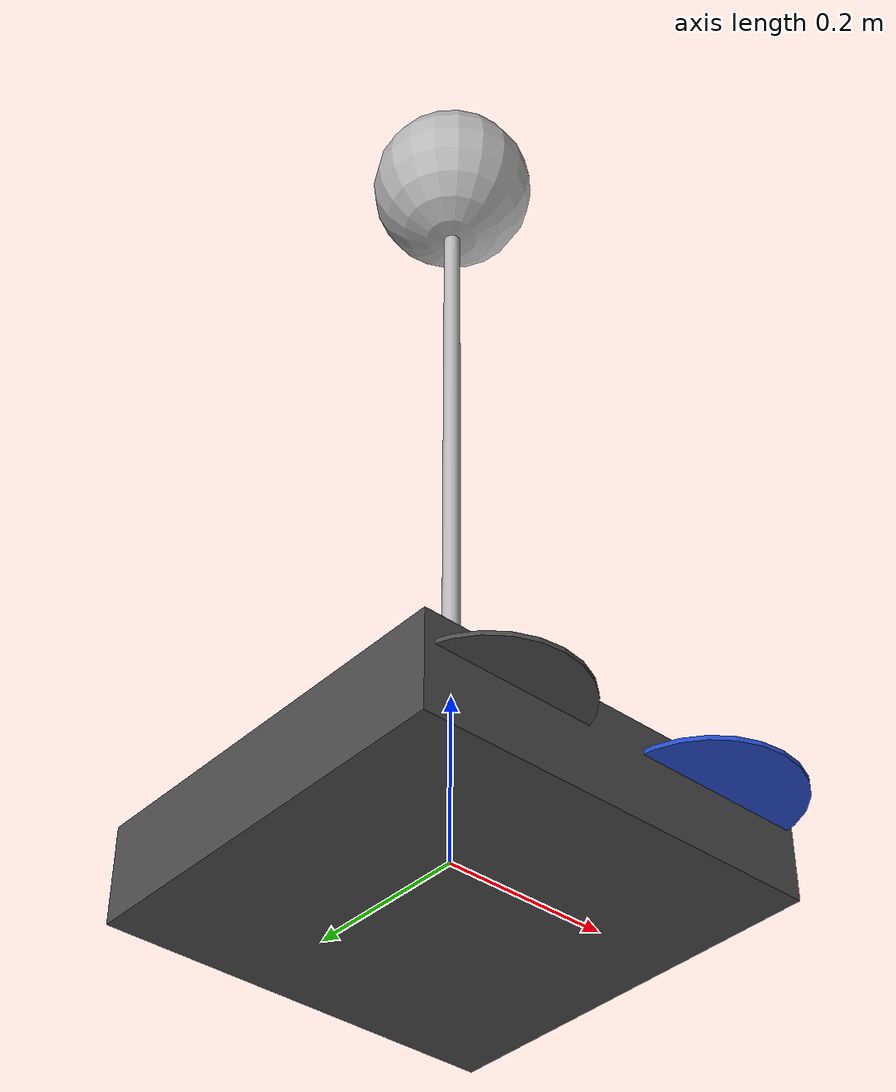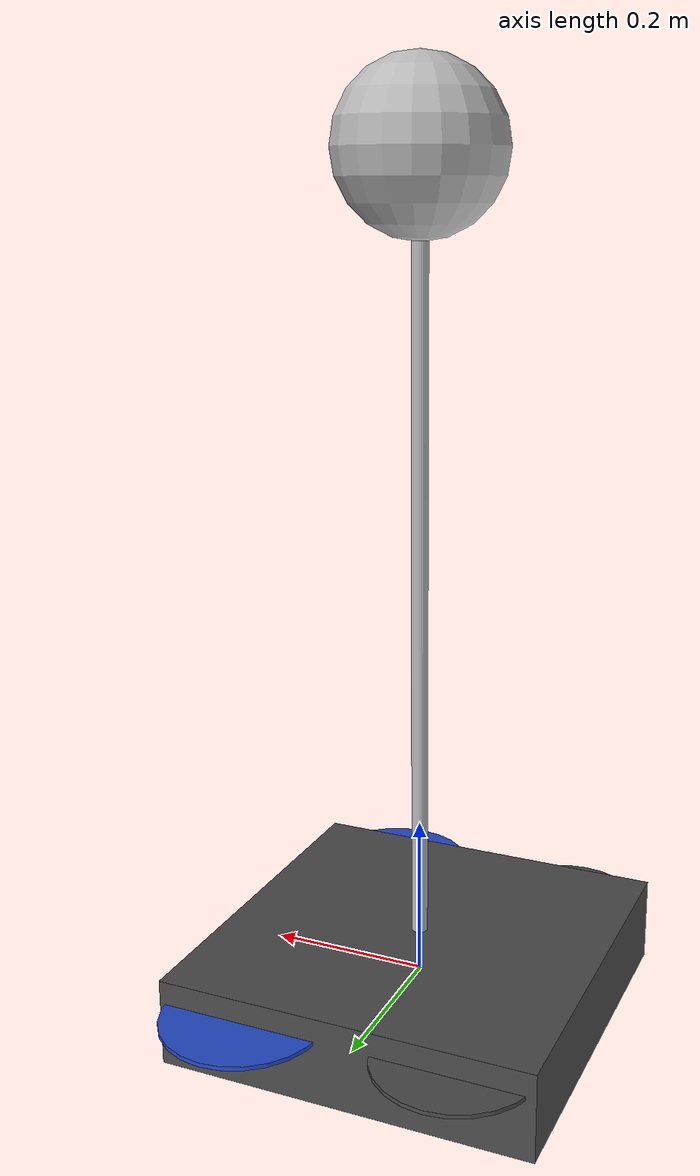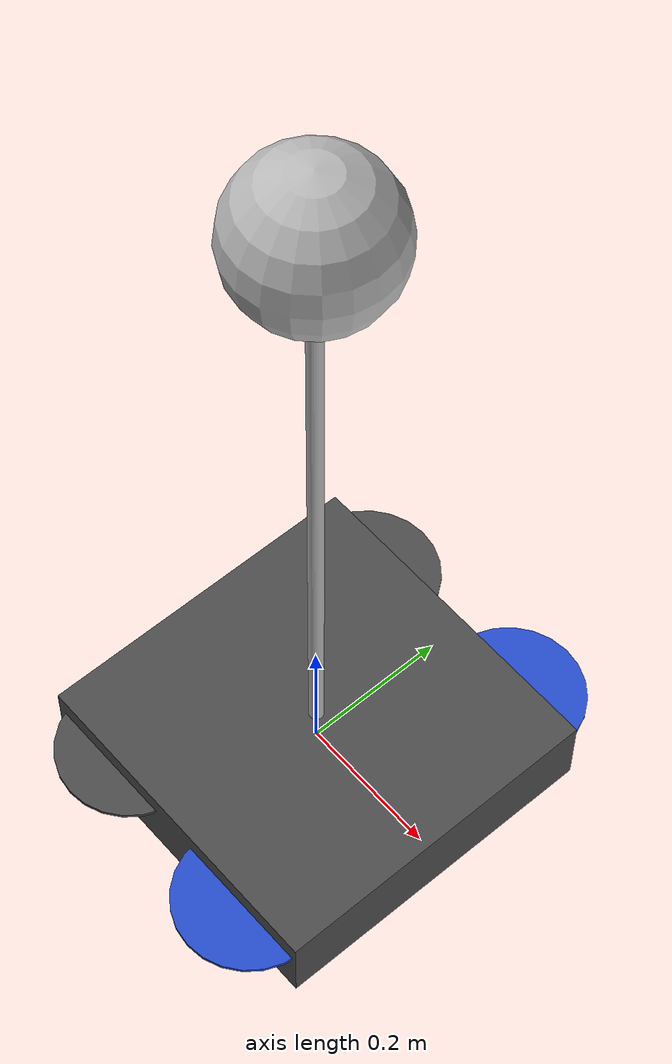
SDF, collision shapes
<?xml version='1.0'?>
<sdf version='1.6'>
  <model name='iris_pendulum'>
  <static>false</static>
  <include>
    <uri>model://iris</uri>
  </include>

  <link name='pendulum'>
    <pose>0 0 0.5 0 0 0</pose>
    <inertial>
      <mass>0.01</mass>
      <inertia>
        <ixx>0.00005</ixx>
        <ixy>0</ixy>
        <ixz>0</ixz>
        <iyy>0.008333</iyy>
        <iyz>0</iyz>
        <izz>0.008333</izz>
      </inertia>
    </inertial>
    <collision name='pendulun_collision'>
      <geometry>
        <cylinder>
          <radius>0.01</radius>
          <length>1</length>
        </cylinder>
      </geometry>
    </collision>
    <visual name='pendulum_visual'>
      <geometry>
        <cylinder>
          <radius>0.01</radius>
          <length>1</length>
        </cylinder>
      </geometry>
    </visual>
    <gravity>1</gravity>
  </link>

  <link name='load'>
    <pose>0 0 1 0 0 0</pose>
    <inertial>
      <mass>0.1</mass>
      <inertia>
        <ixx>0.004</ixx>
        <ixy>0</ixy>
        <ixz>0</ixz>
        <iyy>0.004</iyy>
        <iyz>0</iyz>
        <izz>0.004</izz>
      </inertia>
    </inertial>

    <collision name='load_collision'>
      <geometry>
        <sphere>
          <radius>0.1 0.1 0.1</radius>
        </sphere>
      </geometry>
    </collision>

    <visual name='load_visual'>
      <geometry>
        <sphere>
          <radius>0.1 0.1 0.1</radius>
        </sphere>
      </geometry>
    </visual>
    <gravity>1</gravity>
  </link>

  <joint name='load_joint' type='universal'>
    <pose>0 0 0 0 0 0</pose>
    <child>load</child>
    <parent>pendulum</parent>
  </joint>

  <joint name='pendulum_joint' type='universal'>
    <pose>0 0 -0.5 0 0 0</pose>
    <child>pendulum</child>
    <parent>iris::base_link</parent>
  </joint>

  </model>
</sdf>

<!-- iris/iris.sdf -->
<sdf version='1.5'>
  <model name='iris'>
    <link name='base_link'>
      <pose>0 0 0 0 -0 0</pose>
      <inertial>
        <pose>0 0 0 0 -0 0</pose>
        <mass>1.5</mass>
        <inertia>
          <ixx>0.0347563</ixx>
          <ixy>0</ixy>
          <ixz>0</ixz>
          <iyy>0.0458929</iyy>
          <iyz>0</iyz>
          <izz>0.0977</izz>
        </inertia>
      </inertial>
      <collision name='base_link_collision'>
        <pose>0 0 0 0 -0 0</pose>
        <geometry>
          <box>
            <size>0.47 0.47 0.11</size>
          </box>
        </geometry>
        <surface>
          <contact>
            <ode/>
          </contact>
          <friction>
            <ode/>
          </friction>
        </surface>
      </collision>
      <visual name='base_link_visual'>
        <pose>0 0 0 0 -0 0</pose>
        <geometry>
          <mesh>
            <scale>1 1 1</scale>
            <uri>model://rotors_description/meshes/iris.dae</uri>
          </mesh>
        </geometry>
        <material>
          <script>
            <name>Gazebo/DarkGrey</name>
            <uri>__default__</uri>
          </script>
        </material>
      </visual>
      <gravity>1</gravity>
      <velocity_decay/>
      <self_collide>0</self_collide>
    </link>
    <link name='iris/imu_link'>
      <pose>0 0 0 0 -0 0</pose>
      <inertial>
        <pose>0 0 0 0 -0 0</pose>
        <mass>0.015</mass>
        <inertia>
          <ixx>1e-05</ixx>
          <ixy>0</ixy>
          <ixz>0</ixz>
          <iyy>1e-05</iyy>
          <iyz>0</iyz>
          <izz>1e-05</izz>
        </inertia>
      </inertial>
    </link>
    <joint name='iris/imu_joint' type='revolute'>
      <child>iris/imu_link</child>
      <parent>base_link</parent>
      <axis>
        <xyz>1 0 0</xyz>
        <limit>
          <lower>0</lower>
          <upper>0</upper>
          <effort>0</effort>
          <velocity>0</velocity>
        </limit>
        <dynamics>
          <spring_reference>0</spring_reference>
          <spring_stiffness>0</spring_stiffness>
        </dynamics>
        <use_parent_model_frame>1</use_parent_model_frame>
      </axis>
    </joint>
    <link name='rotor_0'>
      <pose>0.13 -0.22 0.023 0 -0 0</pose>
      <inertial>
        <pose>0 0 0 0 -0 0</pose>
        <mass>0.005</mass>
        <inertia>
          <ixx>9.75e-07</ixx>
          <ixy>0</ixy>
          <ixz>0</ixz>
          <iyy>0.000166704</iyy>
          <iyz>0</iyz>
          <izz>0.000167604</izz>
        </inertia>
      </inertial>
      <collision name='rotor_0_collision'>
        <pose>0 0 0 0 -0 0</pose>
        <geometry>
          <cylinder>
            <length>0.005</length>
            <radius>0.1</radius>
          </cylinder>
        </geometry>
        <surface>
          <contact>
            <ode/>
          </contact>
          <friction>
            <ode/>
          </friction>
        </surface>
      </collision>
      <visual name='rotor_0_visual'>
        <pose>0 0 0 0 -0 0</pose>
        <geometry>
          <mesh>
            <scale>1 1 1</scale>
            <uri>model://rotors_description/meshes/iris_prop_ccw.dae</uri>
          </mesh>
        </geometry>
        <material>
          <script>
            <name>Gazebo/Blue</name>
            <uri>__default__</uri>
          </script>
        </material>
      </visual>
      <gravity>1</gravity>
      <velocity_decay/>
      <self_collide>0</self_collide>
    </link>
    <joint name='rotor_0_joint' type='revolute'>
      <child>rotor_0</child>
      <parent>base_link</parent>
      <axis>
        <xyz>0 0 1</xyz>
        <limit>
          <lower>-1e+16</lower>
          <upper>1e+16</upper>
        </limit>
        <dynamics>
          <spring_reference>0</spring_reference>
          <spring_stiffness>0</spring_stiffness>
        </dynamics>
        <use_parent_model_frame>1</use_parent_model_frame>
      </axis>
    </joint>
    <link name='rotor_1'>
      <pose>-0.13 0.2 0.023 0 -0 0</pose>
      <inertial>
        <pose>0 0 0 0 -0 0</pose>
        <mass>0.005</mass>
        <inertia>
          <ixx>9.75e-07</ixx>
          <ixy>0</ixy>
          <ixz>0</ixz>
          <iyy>0.000166704</iyy>
          <iyz>0</iyz>
          <izz>0.000167604</izz>
        </inertia>
      </inertial>
      <collision name='rotor_1_collision'>
        <pose>0 0 0 0 -0 0</pose>
        <geometry>
          <cylinder>
            <length>0.005</length>
            <radius>0.1</radius>
          </cylinder>
        </geometry>
        <surface>
          <contact>
            <ode/>
          </contact>
          <friction>
            <ode/>
          </friction>
        </surface>
      </collision>
      <visual name='rotor_1_visual'>
        <pose>0 0 0 0 -0 0</pose>
        <geometry>
          <mesh>
            <scale>1 1 1</scale>
            <uri>model://rotors_description/meshes/iris_prop_ccw.dae</uri>
          </mesh>
        </geometry>
        <material>
          <script>
            <name>Gazebo/DarkGrey</name>
            <uri>__default__</uri>
          </script>
        </material>
      </visual>
      <gravity>1</gravity>
      <velocity_decay/>
      <self_collide>0</self_collide>
    </link>
    <joint name='rotor_1_joint' type='revolute'>
      <child>rotor_1</child>
      <parent>base_link</parent>
      <axis>
        <xyz>0 0 1</xyz>
        <limit>
          <lower>-1e+16</lower>
          <upper>1e+16</upper>
        </limit>
        <dynamics>
          <spring_reference>0</spring_reference>
          <spring_stiffness>0</spring_stiffness>
        </dynamics>
        <use_parent_model_frame>1</use_parent_model_frame>
      </axis>
    </joint>
    <link name='rotor_2'>
      <pose>0.13 0.22 0.023 0 -0 0</pose>
      <inertial>
        <pose>0 0 0 0 -0 0</pose>
        <mass>0.005</mass>
        <inertia>
          <ixx>9.75e-07</ixx>
          <ixy>0</ixy>
          <ixz>0</ixz>
          <iyy>0.000166704</iyy>
          <iyz>0</iyz>
          <izz>0.000167604</izz>
        </inertia>
      </inertial>
      <collision name='rotor_2_collision'>
        <pose>0 0 0 0 -0 0</pose>
        <geometry>
          <cylinder>
            <length>0.005</length>
            <radius>0.1</radius>
          </cylinder>
        </geometry>
        <surface>
          <contact>
            <ode/>
          </contact>
          <friction>
            <ode/>
          </friction>
        </surface>
      </collision>
      <visual name='rotor_2_visual'>
        <pose>0 0 0 0 -0 0</pose>
        <geometry>
          <mesh>
            <scale>1 1 1</scale>
            <uri>model://rotors_description/meshes/iris_prop_cw.dae</uri>
          </mesh>
        </geometry>
        <material>
          <script>
            <name>Gazebo/Blue</name>
            <uri>__default__</uri>
          </script>
        </material>
      </visual>
      <gravity>1</gravity>
      <velocity_decay/>
      <self_collide>0</self_collide>
    </link>
    <joint name='rotor_2_joint' type='revolute'>
      <child>rotor_2</child>
      <parent>base_link</parent>
      <axis>
        <xyz>0 0 1</xyz>
        <limit>
          <lower>-1e+16</lower>
          <upper>1e+16</upper>
        </limit>
        <dynamics>
          <spring_reference>0</spring_reference>
          <spring_stiffness>0</spring_stiffness>
        </dynamics>
        <use_parent_model_frame>1</use_parent_model_frame>
      </axis>
    </joint>
    <link name='rotor_3'>
      <pose>-0.13 -0.2 0.023 0 -0 0</pose>
      <inertial>
        <pose>0 0 0 0 -0 0</pose>
        <mass>0.005</mass>
        <inertia>
          <ixx>9.75e-07</ixx>
          <ixy>0</ixy>
          <ixz>0</ixz>
          <iyy>0.000166704</iyy>
          <iyz>0</iyz>
          <izz>0.000167604</izz>
        </inertia>
      </inertial>
      <collision name='rotor_3_collision'>
        <pose>0 0 0 0 -0 0</pose>
        <geometry>
          <cylinder>
            <length>0.005</length>
            <radius>0.1</radius>
          </cylinder>
        </geometry>
        <surface>
          <contact>
            <ode/>
          </contact>
          <friction>
            <ode/>
          </friction>
        </surface>
      </collision>
      <visual name='rotor_3_visual'>
        <pose>0 0 0 0 -0 0</pose>
        <geometry>
          <mesh>
            <scale>1 1 1</scale>
            <uri>model://rotors_description/meshes/iris_prop_cw.dae</uri>
          </mesh>
        </geometry>
        <material>
          <script>
            <name>Gazebo/DarkGrey</name>
            <uri>__default__</uri>
          </script>
        </material>
      </visual>
      <gravity>1</gravity>
      <velocity_decay/>
      <self_collide>0</self_collide>
    </link>
    <joint name='rotor_3_joint' type='revolute'>
      <child>rotor_3</child>
      <parent>base_link</parent>
      <axis>
        <xyz>0 0 1</xyz>
        <limit>
          <lower>-1e+16</lower>
          <upper>1e+16</upper>
        </limit>
        <dynamics>
          <spring_reference>0</spring_reference>
          <spring_stiffness>0</spring_stiffness>
        </dynamics>
        <use_parent_model_frame>1</use_parent_model_frame>
      </axis>
    </joint>
    <plugin name='rosbag' filename='librotors_gazebo_multirotor_base_plugin.so'>
      <linkName>base_link</linkName>
      <motorPubTopic>~/motors</motorPubTopic>
      <rotorVelocitySlowdownSim>10</rotorVelocitySlowdownSim>
    </plugin>
    <plugin name='front_right_motor_model' filename='librotors_gazebo_motor_model.so'>
      <jointName>rotor_0_joint</jointName>
      <linkName>rotor_0</linkName>
      <turningDirection>ccw</turningDirection>
      <timeConstantUp>0.0125</timeConstantUp>
      <timeConstantDown>0.025</timeConstantDown>
      <maxRotVelocity>838</maxRotVelocity>
      <motorConstant>8.54858e-06</motorConstant>
      <momentConstant>0.16</momentConstant>
      <motorNumber>0</motorNumber>
      <rotorDragCoefficient>8.06428e-05</rotorDragCoefficient>
      <rollingMomentCoefficient>1e-06</rollingMomentCoefficient>
      <commandSubTopic>~/command/motor_speed</commandSubTopic>
      <motorSpeedPubTopic>~/motor_speed/0</motorSpeedPubTopic>
      <rotorVelocitySlowdownSim>10</rotorVelocitySlowdownSim>
    </plugin>
    <plugin name='back_left_motor_model' filename='librotors_gazebo_motor_model.so'>
      <jointName>rotor_1_joint</jointName>
      <linkName>rotor_1</linkName>
      <turningDirection>ccw</turningDirection>
      <timeConstantUp>0.0125</timeConstantUp>
      <timeConstantDown>0.025</timeConstantDown>
      <maxRotVelocity>838</maxRotVelocity>
      <motorConstant>8.54858e-06</motorConstant>
      <momentConstant>0.16</momentConstant>
      <motorNumber>1</motorNumber>
      <rotorDragCoefficient>8.06428e-05</rotorDragCoefficient>
      <rollingMomentCoefficient>1e-06</rollingMomentCoefficient>
      <commandSubTopic>~/command/motor_speed</commandSubTopic>
      <motorSpeedPubTopic>~/motor_speed/1</motorSpeedPubTopic>
      <rotorVelocitySlowdownSim>10</rotorVelocitySlowdownSim>
    </plugin>
    <plugin name='front_left_motor_model' filename='librotors_gazebo_motor_model.so'>
      <jointName>rotor_2_joint</jointName>
      <linkName>rotor_2</linkName>
      <turningDirection>cw</turningDirection>
      <timeConstantUp>0.0125</timeConstantUp>
      <timeConstantDown>0.025</timeConstantDown>
      <maxRotVelocity>838</maxRotVelocity>
      <motorConstant>8.54858e-06</motorConstant>
      <momentConstant>0.16</momentConstant>
      <motorNumber>2</motorNumber>
      <rotorDragCoefficient>8.06428e-05</rotorDragCoefficient>
      <rollingMomentCoefficient>1e-06</rollingMomentCoefficient>
      <commandSubTopic>~/command/motor_speed</commandSubTopic>
      <motorSpeedPubTopic>~/motor_speed/2</motorSpeedPubTopic>
      <rotorVelocitySlowdownSim>10</rotorVelocitySlowdownSim>
    </plugin>
    <plugin name='back_right_motor_model' filename='librotors_gazebo_motor_model.so'>
      <jointName>rotor_3_joint</jointName>
      <linkName>rotor_3</linkName>
      <turningDirection>cw</turningDirection>
      <timeConstantUp>0.0125</timeConstantUp>
      <timeConstantDown>0.025</timeConstantDown>
      <maxRotVelocity>838</maxRotVelocity>
      <motorConstant>8.54858e-06</motorConstant>
      <momentConstant>0.16</momentConstant>
      <motorNumber>3</motorNumber>
      <rotorDragCoefficient>8.06428e-05</rotorDragCoefficient>
      <rollingMomentCoefficient>1e-06</rollingMomentCoefficient>
      <commandSubTopic>~/command/motor_speed</commandSubTopic>
      <motorSpeedPubTopic>~/motor_speed/3</motorSpeedPubTopic>
      <rotorVelocitySlowdownSim>10</rotorVelocitySlowdownSim>
    </plugin>
    <plugin name='mavlink_interface' filename='librotors_gazebo_mavlink_interface.so'>
      <imuSubTopic>~/imu</imuSubTopic>
      <motorSpeedCommandPubTopic>~/command/motor_speed</motorSpeedCommandPubTopic>
      <udpPort>14560</udpPort>
      <udpPort2>14556</udpPort2>
      <portStep>10</portStep>
    </plugin>
    <static>0</static>
    <plugin name='rotors_gazebo_imu_plugin' filename='librotors_gazebo_imu_plugin.so'>
      <linkName>iris/imu_link</linkName>
      <imuTopic>~/imu</imuTopic>
      <gyroscopeNoiseDensity>0.0003394</gyroscopeNoiseDensity>
      <gyroscopeRandomWalk>3.8785e-05</gyroscopeRandomWalk>
      <gyroscopeBiasCorrelationTime>1000.0</gyroscopeBiasCorrelationTime>
      <gyroscopeTurnOnBiasSigma>0.0087</gyroscopeTurnOnBiasSigma>
      <accelerometerNoiseDensity>0.004</accelerometerNoiseDensity>
      <accelerometerRandomWalk>0.006</accelerometerRandomWalk>
      <accelerometerBiasCorrelationTime>300.0</accelerometerBiasCorrelationTime>
      <accelerometerTurnOnBiasSigma>0.196</accelerometerTurnOnBiasSigma>
    </plugin>
  </model>
</sdf>
